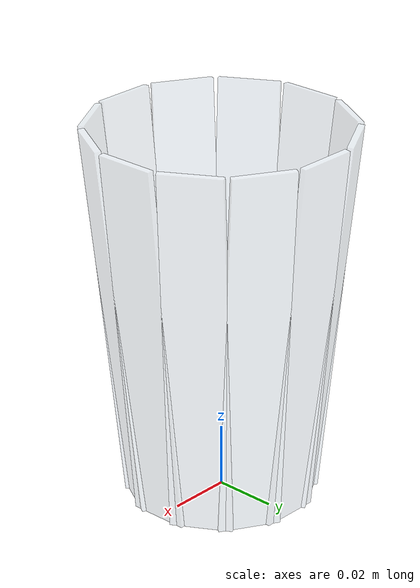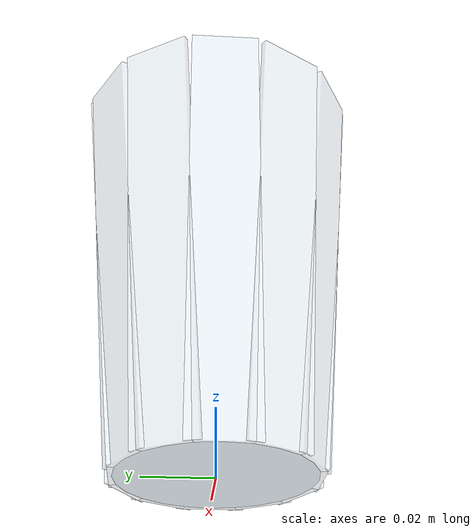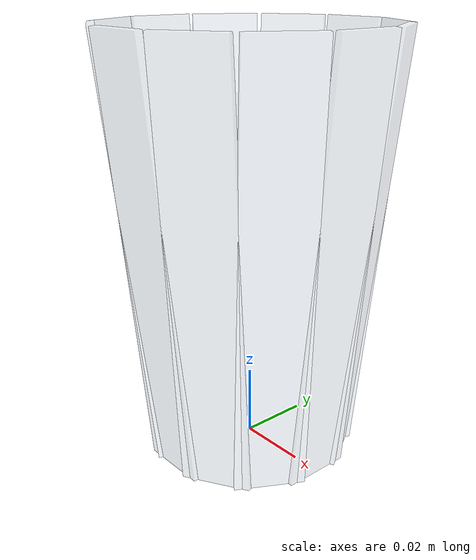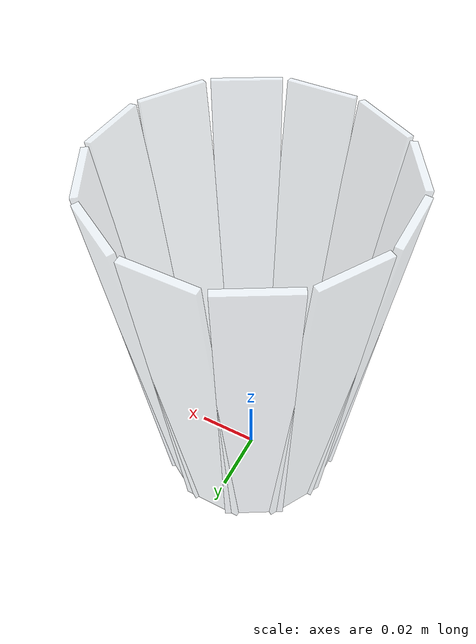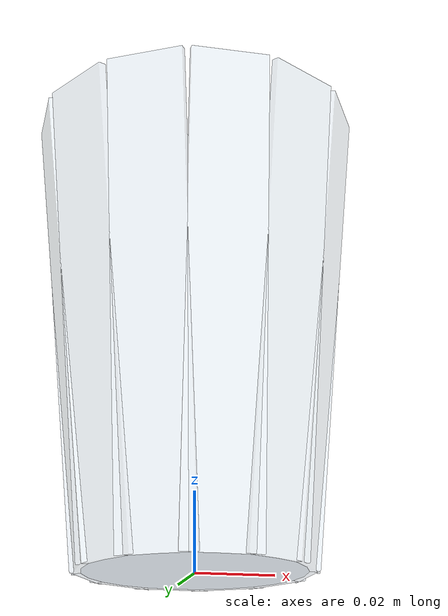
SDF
<?xml version="1.0" ?>
<sdf version="1.7">
  <model name="cup">
    <static>true</static>

    <link name="link">

      <!-- Container floor. Must be a box, and must stay thin relative to its
           own width (the detector requires size_z < min(size_x, size_y) / 2),
           or the cup stops reading as a container. -->
      <collision name="col_floor">
        <pose>0 0 0.00100 0 0 0</pose>
        <geometry><box><size>0.03811 0.03811 0.00200</size></box></geometry>
        <surface><friction><ode><mu>0.9</mu><mu2>0.9</mu2></ode></friction></surface>
      </collision>
      <visual name="vis_floor">
        <pose>0 0 0.00100 0 0 0</pose>
        <geometry><cylinder><radius>0.02750</radius><length>0.00200</length></cylinder></geometry>
        <material>
          <ambient>0.70 0.78 0.85 0.45</ambient>
          <diffuse>0.70 0.78 0.85 0.45</diffuse>
        </material>
        <transparency>0.55</transparency>
      </visual>

      <collision name="col_wall_0">
        <pose>0.03375 0.00000 0.06000 0 0.10379 0.00000</pose>
        <geometry><box><size>0.00200 0.01953 0.12065</size></box></geometry>
        <surface><friction><ode><mu>0.9</mu><mu2>0.9</mu2></ode></friction></surface>
      </collision>
      <visual name="vis_wall_0">
        <pose>0.03375 0.00000 0.06000 0 0.10379 0.00000</pose>
        <geometry><box><size>0.00200 0.01953 0.12065</size></box></geometry>
        <material>
          <ambient>0.75 0.82 0.88 0.30</ambient>
          <diffuse>0.75 0.82 0.88 0.30</diffuse>
          <specular>0.9 0.9 0.9 1</specular>
        </material>
        <transparency>0.70</transparency>
      </visual>
      <collision name="col_wall_1">
        <pose>0.02923 0.01687 0.06000 0 0.10379 0.52360</pose>
        <geometry><box><size>0.00200 0.01953 0.12065</size></box></geometry>
        <surface><friction><ode><mu>0.9</mu><mu2>0.9</mu2></ode></friction></surface>
      </collision>
      <visual name="vis_wall_1">
        <pose>0.02923 0.01687 0.06000 0 0.10379 0.52360</pose>
        <geometry><box><size>0.00200 0.01953 0.12065</size></box></geometry>
        <material>
          <ambient>0.75 0.82 0.88 0.30</ambient>
          <diffuse>0.75 0.82 0.88 0.30</diffuse>
          <specular>0.9 0.9 0.9 1</specular>
        </material>
        <transparency>0.70</transparency>
      </visual>
      <collision name="col_wall_2">
        <pose>0.01688 0.02923 0.06000 0 0.10379 1.04720</pose>
        <geometry><box><size>0.00200 0.01953 0.12065</size></box></geometry>
        <surface><friction><ode><mu>0.9</mu><mu2>0.9</mu2></ode></friction></surface>
      </collision>
      <visual name="vis_wall_2">
        <pose>0.01688 0.02923 0.06000 0 0.10379 1.04720</pose>
        <geometry><box><size>0.00200 0.01953 0.12065</size></box></geometry>
        <material>
          <ambient>0.75 0.82 0.88 0.30</ambient>
          <diffuse>0.75 0.82 0.88 0.30</diffuse>
          <specular>0.9 0.9 0.9 1</specular>
        </material>
        <transparency>0.70</transparency>
      </visual>
      <collision name="col_wall_3">
        <pose>0.00000 0.03375 0.06000 0 0.10379 1.57080</pose>
        <geometry><box><size>0.00200 0.01953 0.12065</size></box></geometry>
        <surface><friction><ode><mu>0.9</mu><mu2>0.9</mu2></ode></friction></surface>
      </collision>
      <visual name="vis_wall_3">
        <pose>0.00000 0.03375 0.06000 0 0.10379 1.57080</pose>
        <geometry><box><size>0.00200 0.01953 0.12065</size></box></geometry>
        <material>
          <ambient>0.75 0.82 0.88 0.30</ambient>
          <diffuse>0.75 0.82 0.88 0.30</diffuse>
          <specular>0.9 0.9 0.9 1</specular>
        </material>
        <transparency>0.70</transparency>
      </visual>
      <collision name="col_wall_4">
        <pose>-0.01687 0.02923 0.06000 0 0.10379 2.09440</pose>
        <geometry><box><size>0.00200 0.01953 0.12065</size></box></geometry>
        <surface><friction><ode><mu>0.9</mu><mu2>0.9</mu2></ode></friction></surface>
      </collision>
      <visual name="vis_wall_4">
        <pose>-0.01687 0.02923 0.06000 0 0.10379 2.09440</pose>
        <geometry><box><size>0.00200 0.01953 0.12065</size></box></geometry>
        <material>
          <ambient>0.75 0.82 0.88 0.30</ambient>
          <diffuse>0.75 0.82 0.88 0.30</diffuse>
          <specular>0.9 0.9 0.9 1</specular>
        </material>
        <transparency>0.70</transparency>
      </visual>
      <collision name="col_wall_5">
        <pose>-0.02923 0.01687 0.06000 0 0.10379 2.61799</pose>
        <geometry><box><size>0.00200 0.01953 0.12065</size></box></geometry>
        <surface><friction><ode><mu>0.9</mu><mu2>0.9</mu2></ode></friction></surface>
      </collision>
      <visual name="vis_wall_5">
        <pose>-0.02923 0.01687 0.06000 0 0.10379 2.61799</pose>
        <geometry><box><size>0.00200 0.01953 0.12065</size></box></geometry>
        <material>
          <ambient>0.75 0.82 0.88 0.30</ambient>
          <diffuse>0.75 0.82 0.88 0.30</diffuse>
          <specular>0.9 0.9 0.9 1</specular>
        </material>
        <transparency>0.70</transparency>
      </visual>
      <collision name="col_wall_6">
        <pose>-0.03375 0.00000 0.06000 0 0.10379 3.14159</pose>
        <geometry><box><size>0.00200 0.01953 0.12065</size></box></geometry>
        <surface><friction><ode><mu>0.9</mu><mu2>0.9</mu2></ode></friction></surface>
      </collision>
      <visual name="vis_wall_6">
        <pose>-0.03375 0.00000 0.06000 0 0.10379 3.14159</pose>
        <geometry><box><size>0.00200 0.01953 0.12065</size></box></geometry>
        <material>
          <ambient>0.75 0.82 0.88 0.30</ambient>
          <diffuse>0.75 0.82 0.88 0.30</diffuse>
          <specular>0.9 0.9 0.9 1</specular>
        </material>
        <transparency>0.70</transparency>
      </visual>
      <collision name="col_wall_7">
        <pose>-0.02923 -0.01687 0.06000 0 0.10379 3.66519</pose>
        <geometry><box><size>0.00200 0.01953 0.12065</size></box></geometry>
        <surface><friction><ode><mu>0.9</mu><mu2>0.9</mu2></ode></friction></surface>
      </collision>
      <visual name="vis_wall_7">
        <pose>-0.02923 -0.01687 0.06000 0 0.10379 3.66519</pose>
        <geometry><box><size>0.00200 0.01953 0.12065</size></box></geometry>
        <material>
          <ambient>0.75 0.82 0.88 0.30</ambient>
          <diffuse>0.75 0.82 0.88 0.30</diffuse>
          <specular>0.9 0.9 0.9 1</specular>
        </material>
        <transparency>0.70</transparency>
      </visual>
      <collision name="col_wall_8">
        <pose>-0.01688 -0.02923 0.06000 0 0.10379 4.18879</pose>
        <geometry><box><size>0.00200 0.01953 0.12065</size></box></geometry>
        <surface><friction><ode><mu>0.9</mu><mu2>0.9</mu2></ode></friction></surface>
      </collision>
      <visual name="vis_wall_8">
        <pose>-0.01688 -0.02923 0.06000 0 0.10379 4.18879</pose>
        <geometry><box><size>0.00200 0.01953 0.12065</size></box></geometry>
        <material>
          <ambient>0.75 0.82 0.88 0.30</ambient>
          <diffuse>0.75 0.82 0.88 0.30</diffuse>
          <specular>0.9 0.9 0.9 1</specular>
        </material>
        <transparency>0.70</transparency>
      </visual>
      <collision name="col_wall_9">
        <pose>-0.00000 -0.03375 0.06000 0 0.10379 4.71239</pose>
        <geometry><box><size>0.00200 0.01953 0.12065</size></box></geometry>
        <surface><friction><ode><mu>0.9</mu><mu2>0.9</mu2></ode></friction></surface>
      </collision>
      <visual name="vis_wall_9">
        <pose>-0.00000 -0.03375 0.06000 0 0.10379 4.71239</pose>
        <geometry><box><size>0.00200 0.01953 0.12065</size></box></geometry>
        <material>
          <ambient>0.75 0.82 0.88 0.30</ambient>
          <diffuse>0.75 0.82 0.88 0.30</diffuse>
          <specular>0.9 0.9 0.9 1</specular>
        </material>
        <transparency>0.70</transparency>
      </visual>
      <collision name="col_wall_10">
        <pose>0.01688 -0.02923 0.06000 0 0.10379 5.23599</pose>
        <geometry><box><size>0.00200 0.01953 0.12065</size></box></geometry>
        <surface><friction><ode><mu>0.9</mu><mu2>0.9</mu2></ode></friction></surface>
      </collision>
      <visual name="vis_wall_10">
        <pose>0.01688 -0.02923 0.06000 0 0.10379 5.23599</pose>
        <geometry><box><size>0.00200 0.01953 0.12065</size></box></geometry>
        <material>
          <ambient>0.75 0.82 0.88 0.30</ambient>
          <diffuse>0.75 0.82 0.88 0.30</diffuse>
          <specular>0.9 0.9 0.9 1</specular>
        </material>
        <transparency>0.70</transparency>
      </visual>
      <collision name="col_wall_11">
        <pose>0.02923 -0.01688 0.06000 0 0.10379 5.75959</pose>
        <geometry><box><size>0.00200 0.01953 0.12065</size></box></geometry>
        <surface><friction><ode><mu>0.9</mu><mu2>0.9</mu2></ode></friction></surface>
      </collision>
      <visual name="vis_wall_11">
        <pose>0.02923 -0.01688 0.06000 0 0.10379 5.75959</pose>
        <geometry><box><size>0.00200 0.01953 0.12065</size></box></geometry>
        <material>
          <ambient>0.75 0.82 0.88 0.30</ambient>
          <diffuse>0.75 0.82 0.88 0.30</diffuse>
          <specular>0.9 0.9 0.9 1</specular>
        </material>
        <transparency>0.70</transparency>
      </visual>
    </link>
  </model>
</sdf>
